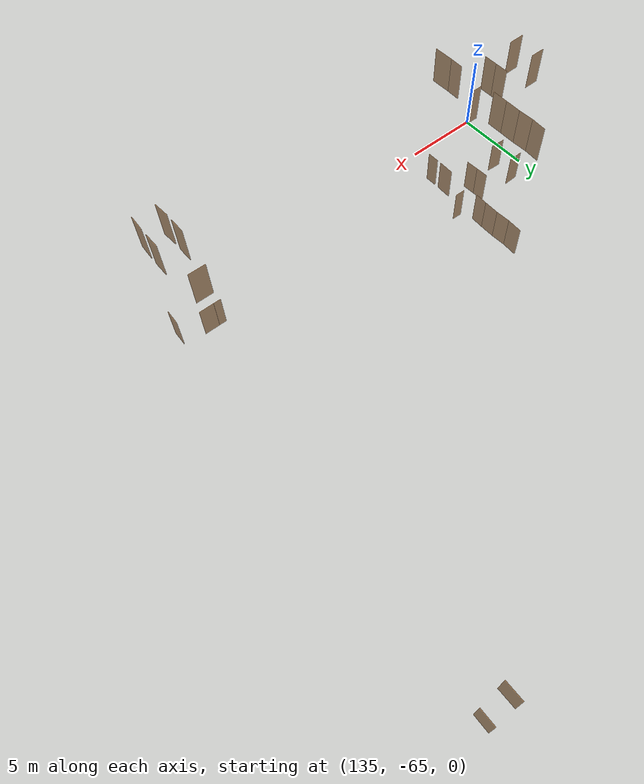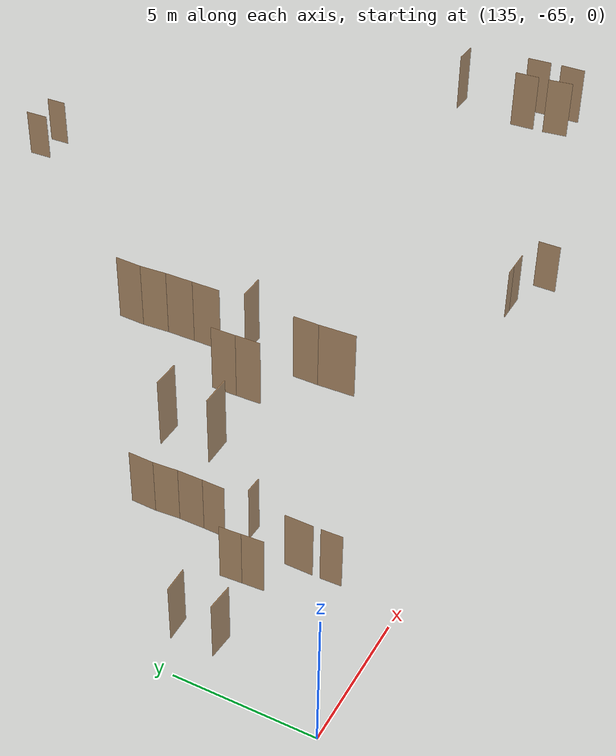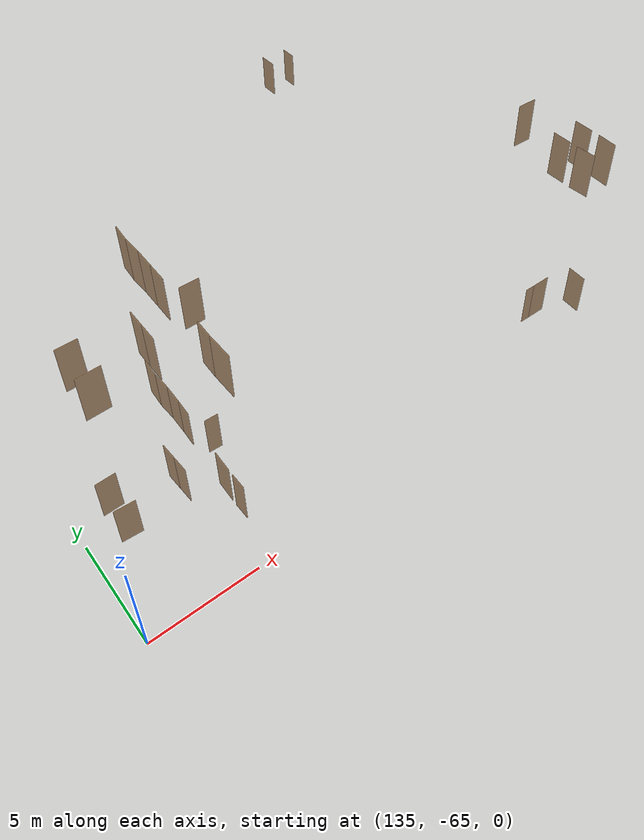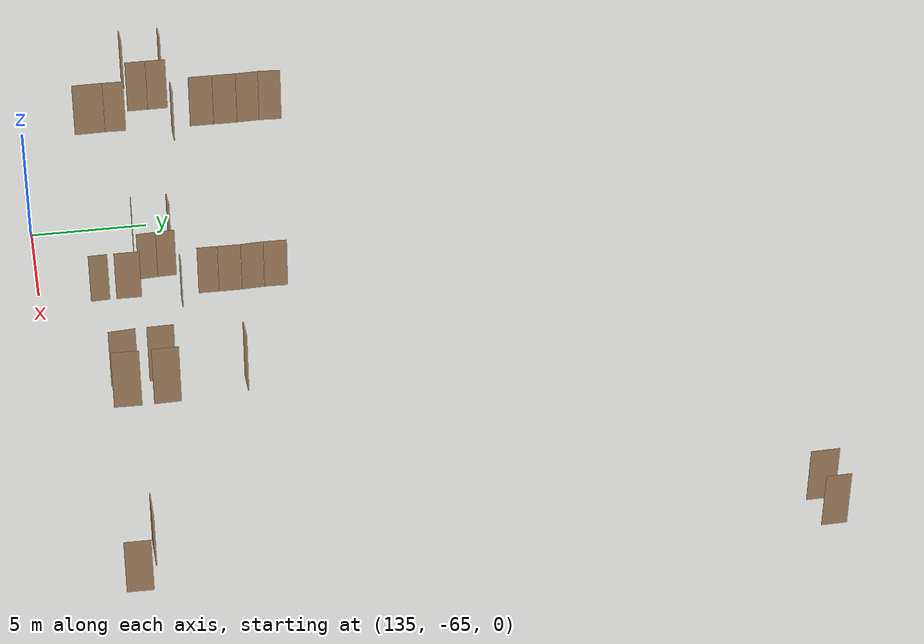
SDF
<sdf version="1.7">
 <world name="sim_world">
  <model name="puerta48">
   <pose>161.20486033684082 -37.1229894100867 0.0 0 0 1.5707963267948966</pose>
   <link name="right">
    <pose>0 0 1.11 0 0 0</pose>
    <visual name="right_visual">
     <geometry><box><size>0.9678314449320291 0.03 2.2</size></box></geometry>
     <material>
      <ambient>0.5 0.25 0 0.6</ambient>
      <diffuse>0.5 0.25 0 0.6</diffuse>
      <pbr><metal><metalness>0.0</metalness></metal></pbr>
     </material>
    </visual>
    <collision name="right_collision">
     <geometry><box><size>0.9678314449320291 0.03 2.2</size></box></geometry>
     <surface><contact><collide_bitmask>0x02</collide_bitmask></contact></surface>
    </collision>
    <inertial>
     <mass>50.0</mass>
     <inertia><ixx>20.17041666666667</ixx><iyy>24.06957377416342</iyy><izz>3.9066571074967475</izz></inertia>
    </inertial>
   </link>
   <joint name="right_joint" type="revolute">
    <parent>world</parent>
    <child>right</child>
    <axis><xyz>0 0 1</xyz><limit><lower>0</lower><upper>1.57</upper></limit></axis>
    <pose>0.48891572246601456 0 0 0 0 0</pose>
   </joint>
   <plugin name="register_component" filename="libregister_component.so">
    <component name="Door">
     <v_max_door>0.5</v_max_door>
     <a_max_door>0.3</a_max_door>
     <a_nom_door>0.15</a_nom_door>
     <dx_min_door>0.01</dx_min_door>
     <f_max_door>500.0</f_max_door>
     <ros_interface>true</ros_interface>
     <door name="puerta48" type="SwingDoor" left_joint_name="empty_joint" right_joint_name="right_joint"/>
    </component>
   </plugin>
  </model>
  <model name="puerta49">
   <pose>159.6233365168988 -37.1172463701042 0.0 0 0 -1.561045129849499</pose>
   <link name="right">
    <pose>0 0 1.11 0 0 0</pose>
    <visual name="right_visual">
     <geometry><box><size>1.1075266973527584 0.03 2.2</size></box></geometry>
     <material>
      <ambient>0.5 0.25 0 0.6</ambient>
      <diffuse>0.5 0.25 0 0.6</diffuse>
      <pbr><metal><metalness>0.0</metalness></metal></pbr>
     </material>
    </visual>
    <collision name="right_collision">
     <geometry><box><size>1.1075266973527584 0.03 2.2</size></box></geometry>
     <surface><contact><collide_bitmask>0x02</collide_bitmask></contact></surface>
    </collision>
    <inertial>
     <mass>50.0</mass>
     <inertia><ixx>20.17041666666667</ixx><iyy>25.27756410562129</iyy><izz>5.114647438954619</izz></inertia>
    </inertial>
   </link>
   <joint name="right_joint" type="revolute">
    <parent>world</parent>
    <child>right</child>
    <axis><xyz>0 0 -1</xyz><limit><lower>0</lower><upper>1.57</upper></limit></axis>
    <pose>0.5587633486763792 0 0 0 0 0</pose>
   </joint>
   <plugin name="register_component" filename="libregister_component.so">
    <component name="Door">
     <v_max_door>0.5</v_max_door>
     <a_max_door>0.3</a_max_door>
     <a_nom_door>0.15</a_nom_door>
     <dx_min_door>0.01</dx_min_door>
     <f_max_door>500.0</f_max_door>
     <ros_interface>true</ros_interface>
     <door name="puerta49" type="SwingDoor" left_joint_name="empty_joint" right_joint_name="right_joint"/>
    </component>
   </plugin>
  </model>
  <model name="puerta96">
   <pose>158.44045961149277 -61.962962651306995 0.0 0 0 -0.0013631082044759458</pose>
   <link name="right">
    <pose>0.2417829091130464 0 1.11 0 0 0</pose>
    <visual name="right_visual">
     <geometry><box><size>0.9571316364521855 0.03 2.2</size></box></geometry>
     <material>
      <ambient>0.5 0.25 0 0.6</ambient>
      <diffuse>0.5 0.25 0 0.6</diffuse>
      <pbr><metal><metalness>0.0</metalness></metal></pbr>
     </material>
    </visual>
    <collision name="right_collision">
     <geometry><box><size>0.9571316364521855 0.03 2.2</size></box></geometry>
     <surface><contact><collide_bitmask>0x02</collide_bitmask></contact></surface>
    </collision>
    <inertial>
     <mass>50.0</mass>
     <inertia><ixx>20.17041666666667</ixx><iyy>23.9837540395735</iyy><izz>3.8208373729068277</izz></inertia>
    </inertial>
   </link>
   <joint name="right_joint" type="revolute">
    <parent>world</parent>
    <child>right</child>
    <axis><xyz>0 0 1</xyz><limit><lower>0</lower><upper>1.57</upper></limit></axis>
    <pose>0.48356581822609274 0 0 0 0 0</pose>
   </joint>
   <link name="left">
    <pose>-0.48356581822609274 0 1.11 0 0 0</pose>
    <visual name="left_visual">
     <geometry><box><size>0.4735658182260928 0.03 2.2</size></box></geometry>
     <material>
      <ambient>0.5 0.25 0 0.6</ambient>
      <diffuse>0.5 0.25 0 0.6</diffuse>
      <pbr><metal><metalness>0.0</metalness></metal></pbr>
     </material>
    </visual>
    <collision name="left_collision">
     <geometry><box><size>0.4735658182260928 0.03 2.2</size></box></geometry>
     <surface><contact><collide_bitmask>0x02</collide_bitmask></contact></surface>
    </collision>
    <inertial>
     <mass>50.0</mass>
     <inertia><ixx>20.17041666666667</ixx><iyy>21.101102434133956</iyy><izz>0.9381857674672867</izz></inertia>
    </inertial>
   </link>
   <joint name="left_joint" type="revolute">
    <parent>world</parent>
    <child>left</child>
    <axis><xyz>0 0 1</xyz><limit><lower>-1.57</lower><upper>0</upper></limit></axis>
    <pose>-0.2417829091130464 0 0 0 0 0</pose>
   </joint>
   <plugin name="register_component" filename="libregister_component.so">
    <component name="Door">
     <v_max_door>0.5</v_max_door>
     <a_max_door>0.3</a_max_door>
     <a_nom_door>0.15</a_nom_door>
     <dx_min_door>0.01</dx_min_door>
     <f_max_door>500.0</f_max_door>
     <ros_interface>true</ros_interface>
     <door name="puerta96" type="DoubleSwingDoor" left_joint_name="left_joint" right_joint_name="right_joint"/>
    </component>
   </plugin>
  </model>
  <model name="puerta97">
   <pose>160.48380378577826 -62.66683215597506 0.0 0 0 1.5333224573307986</pose>
   <link name="right">
    <pose>0 0 1.11 0 0 0</pose>
    <visual name="right_visual">
     <geometry><box><size>0.9715077477447817 0.03 2.2</size></box></geometry>
     <material>
      <ambient>0.5 0.25 0 0.6</ambient>
      <diffuse>0.5 0.25 0 0.6</diffuse>
      <pbr><metal><metalness>0.0</metalness></metal></pbr>
     </material>
    </visual>
    <collision name="right_collision">
     <geometry><box><size>0.9715077477447817 0.03 2.2</size></box></geometry>
     <surface><contact><collide_bitmask>0x02</collide_bitmask></contact></surface>
    </collision>
    <inertial>
     <mass>50.0</mass>
     <inertia><ixx>20.17041666666667</ixx><iyy>24.099280433033915</iyy><izz>3.936363766367243</izz></inertia>
    </inertial>
   </link>
   <joint name="right_joint" type="revolute">
    <parent>world</parent>
    <child>right</child>
    <axis><xyz>0 0 1</xyz><limit><lower>0</lower><upper>1.57</upper></limit></axis>
    <pose>0.49075387387239083 0 0 0 0 0</pose>
   </joint>
   <plugin name="register_component" filename="libregister_component.so">
    <component name="Door">
     <v_max_door>0.5</v_max_door>
     <a_max_door>0.3</a_max_door>
     <a_nom_door>0.15</a_nom_door>
     <dx_min_door>0.01</dx_min_door>
     <f_max_door>500.0</f_max_door>
     <ros_interface>true</ros_interface>
     <door name="puerta97" type="SwingDoor" left_joint_name="empty_joint" right_joint_name="right_joint"/>
    </component>
   </plugin>
  </model>
  <model name="puerta146">
   <pose>136.74281278531123 -60.69867342087435 0.0 0 0 3.0836650988396612</pose>
   <link name="right">
    <pose>0 0 1.11 0 0 0</pose>
    <visual name="right_visual">
     <geometry><box><size>0.9594440184884868 0.03 2.2</size></box></geometry>
     <material>
      <ambient>0.5 0.25 0 0.6</ambient>
      <diffuse>0.5 0.25 0 0.6</diffuse>
      <pbr><metal><metalness>0.0</metalness></metal></pbr>
     </material>
    </visual>
    <collision name="right_collision">
     <geometry><box><size>0.9594440184884868 0.03 2.2</size></box></geometry>
     <surface><contact><collide_bitmask>0x02</collide_bitmask></contact></surface>
    </collision>
    <inertial>
     <mass>50.0</mass>
     <inertia><ixx>20.17041666666667</ixx><iyy>24.00222010255557</iyy><izz>3.8393034358888998</izz></inertia>
    </inertial>
   </link>
   <joint name="right_joint" type="revolute">
    <parent>world</parent>
    <child>right</child>
    <axis><xyz>0 0 -1</xyz><limit><lower>0</lower><upper>1.57</upper></limit></axis>
    <pose>0.4847220092442434 0 0 0 0 0</pose>
   </joint>
   <plugin name="register_component" filename="libregister_component.so">
    <component name="Door">
     <v_max_door>0.5</v_max_door>
     <a_max_door>0.3</a_max_door>
     <a_nom_door>0.15</a_nom_door>
     <dx_min_door>0.01</dx_min_door>
     <f_max_door>500.0</f_max_door>
     <ros_interface>true</ros_interface>
     <door name="puerta146" type="SwingDoor" left_joint_name="empty_joint" right_joint_name="right_joint"/>
    </component>
   </plugin>
  </model>
  <model name="puerta147">
   <pose>136.72754008557757 -59.11443585676477 0.0 0 0 -3.110618760742401</pose>
   <link name="right">
    <pose>0 0 1.11 0 0 0</pose>
    <visual name="right_visual">
     <geometry><box><size>0.9437179433462687 0.03 2.2</size></box></geometry>
     <material>
      <ambient>0.5 0.25 0 0.6</ambient>
      <diffuse>0.5 0.25 0 0.6</diffuse>
      <pbr><metal><metalness>0.0</metalness></metal></pbr>
     </material>
    </visual>
    <collision name="right_collision">
     <geometry><box><size>0.9437179433462687 0.03 2.2</size></box></geometry>
     <surface><contact><collide_bitmask>0x02</collide_bitmask></contact></surface>
    </collision>
    <inertial>
     <mass>50.0</mass>
     <inertia><ixx>20.17041666666667</ixx><iyy>23.87751481914047</iyy><izz>3.7145981524737968</izz></inertia>
    </inertial>
   </link>
   <joint name="right_joint" type="revolute">
    <parent>world</parent>
    <child>right</child>
    <axis><xyz>0 0 1</xyz><limit><lower>0</lower><upper>1.57</upper></limit></axis>
    <pose>0.47685897167313435 0 0 0 0 0</pose>
   </joint>
   <plugin name="register_component" filename="libregister_component.so">
    <component name="Door">
     <v_max_door>0.5</v_max_door>
     <a_max_door>0.3</a_max_door>
     <a_nom_door>0.15</a_nom_door>
     <dx_min_door>0.01</dx_min_door>
     <f_max_door>500.0</f_max_door>
     <ros_interface>true</ros_interface>
     <door name="puerta147" type="SwingDoor" left_joint_name="empty_joint" right_joint_name="right_joint"/>
    </component>
   </plugin>
  </model>
  <model name="puerta148">
   <pose>139.42885151822412 -59.91320226019124 0.0 0 0 -1.519125356661397</pose>
   <link name="right">
    <pose>0.4073107265420726 0 1.11 0 0 0</pose>
    <visual name="right_visual">
     <geometry><box><size>0.8046214530841452 0.03 2.2</size></box></geometry>
     <material>
      <ambient>0.5 0.25 0 0.6</ambient>
      <diffuse>0.5 0.25 0 0.6</diffuse>
      <pbr><metal><metalness>0.0</metalness></metal></pbr>
     </material>
    </visual>
    <collision name="right_collision">
     <geometry><box><size>0.8046214530841452 0.03 2.2</size></box></geometry>
     <surface><contact><collide_bitmask>0x02</collide_bitmask></contact></surface>
    </collision>
    <inertial>
     <mass>50.0</mass>
     <inertia><ixx>20.17041666666667</ixx><iyy>22.864232011513508</iyy><izz>2.701315344846839</izz></inertia>
    </inertial>
   </link>
   <joint name="right_joint" type="revolute">
    <parent>world</parent>
    <child>right</child>
    <axis><xyz>0 0 -1</xyz><limit><lower>0</lower><upper>1.57</upper></limit></axis>
    <pose>0.4073107265420726 0 0 0 0 0</pose>
   </joint>
   <link name="left">
    <pose>-0.4073107265420726 0 1.11 0 0 0</pose>
    <visual name="left_visual">
     <geometry><box><size>0.8046214530841452 0.03 2.2</size></box></geometry>
     <material>
      <ambient>0.5 0.25 0 0.6</ambient>
      <diffuse>0.5 0.25 0 0.6</diffuse>
      <pbr><metal><metalness>0.0</metalness></metal></pbr>
     </material>
    </visual>
    <collision name="left_collision">
     <geometry><box><size>0.8046214530841452 0.03 2.2</size></box></geometry>
     <surface><contact><collide_bitmask>0x02</collide_bitmask></contact></surface>
    </collision>
    <inertial>
     <mass>50.0</mass>
     <inertia><ixx>20.17041666666667</ixx><iyy>22.864232011513508</iyy><izz>2.701315344846839</izz></inertia>
    </inertial>
   </link>
   <joint name="left_joint" type="revolute">
    <parent>world</parent>
    <child>left</child>
    <axis><xyz>0 0 -1</xyz><limit><lower>-1.57</lower><upper>0</upper></limit></axis>
    <pose>-0.4073107265420726 0 0 0 0 0</pose>
   </joint>
   <plugin name="register_component" filename="libregister_component.so">
    <component name="Door">
     <v_max_door>0.5</v_max_door>
     <a_max_door>0.3</a_max_door>
     <a_nom_door>0.15</a_nom_door>
     <dx_min_door>0.01</dx_min_door>
     <f_max_door>500.0</f_max_door>
     <ros_interface>true</ros_interface>
     <door name="puerta148" type="DoubleSwingDoor" left_joint_name="left_joint" right_joint_name="right_joint"/>
    </component>
   </plugin>
  </model>
  <model name="puerta149">
   <pose>141.04184635579915 -57.91445605207021 0.0 0 0 1.538009103442832</pose>
   <link name="right">
    <pose>0 0 1.11 0 0 0</pose>
    <visual name="right_visual">
     <geometry><box><size>0.8460678696328846 0.03 2.2</size></box></geometry>
     <material>
      <ambient>0.5 0.25 0 0.6</ambient>
      <diffuse>0.5 0.25 0 0.6</diffuse>
      <pbr><metal><metalness>0.0</metalness></metal></pbr>
     </material>
    </visual>
    <collision name="right_collision">
     <geometry><box><size>0.8460678696328846 0.03 2.2</size></box></geometry>
     <surface><contact><collide_bitmask>0x02</collide_bitmask></contact></surface>
    </collision>
    <inertial>
     <mass>50.0</mass>
     <inertia><ixx>20.17041666666667</ixx><iyy>23.14929516677137</iyy><izz>2.9863785001046996</izz></inertia>
    </inertial>
   </link>
   <joint name="right_joint" type="revolute">
    <parent>world</parent>
    <child>right</child>
    <axis><xyz>0 0 -1</xyz><limit><lower>0</lower><upper>1.57</upper></limit></axis>
    <pose>0.4280339348164423 0 0 0 0 0</pose>
   </joint>
   <plugin name="register_component" filename="libregister_component.so">
    <component name="Door">
     <v_max_door>0.5</v_max_door>
     <a_max_door>0.3</a_max_door>
     <a_nom_door>0.15</a_nom_door>
     <dx_min_door>0.01</dx_min_door>
     <f_max_door>500.0</f_max_door>
     <ros_interface>true</ros_interface>
     <door name="puerta149" type="SwingDoor" left_joint_name="empty_joint" right_joint_name="right_joint"/>
    </component>
   </plugin>
  </model>
  <model name="puerta150">
   <pose>141.69407057417772 -59.106694323015475 0.0 0 0 3.1202799069450973</pose>
   <link name="right">
    <pose>0 0 1.11 0 0 0</pose>
    <visual name="right_visual">
     <geometry><box><size>0.6494002567926342 0.03 2.2</size></box></geometry>
     <material>
      <ambient>0.5 0.25 0 0.6</ambient>
      <diffuse>0.5 0.25 0 0.6</diffuse>
      <pbr><metal><metalness>0.0</metalness></metal></pbr>
     </material>
    </visual>
    <collision name="right_collision">
     <geometry><box><size>0.6494002567926342 0.03 2.2</size></box></geometry>
     <surface><contact><collide_bitmask>0x02</collide_bitmask></contact></surface>
    </collision>
    <inertial>
     <mass>50.0</mass>
     <inertia><ixx>20.17041666666667</ixx><iyy>21.923836223009754</iyy><izz>1.7609195563430806</izz></inertia>
    </inertial>
   </link>
   <joint name="right_joint" type="revolute">
    <parent>world</parent>
    <child>right</child>
    <axis><xyz>0 0 1</xyz><limit><lower>0</lower><upper>1.57</upper></limit></axis>
    <pose>0.3297001283963171 0 0 0 0 0</pose>
   </joint>
   <plugin name="register_component" filename="libregister_component.so">
    <component name="Door">
     <v_max_door>0.5</v_max_door>
     <a_max_door>0.3</a_max_door>
     <a_nom_door>0.15</a_nom_door>
     <dx_min_door>0.01</dx_min_door>
     <f_max_door>500.0</f_max_door>
     <ros_interface>true</ros_interface>
     <door name="puerta150" type="SwingDoor" left_joint_name="empty_joint" right_joint_name="right_joint"/>
    </component>
   </plugin>
  </model>
  <model name="puerta151">
   <pose>141.0628831322918 -56.99573794908257 0.0 0 0 1.556527497511804</pose>
   <link name="right">
    <pose>0 0 1.11 0 0 0</pose>
    <visual name="right_visual">
     <geometry><box><size>0.9719283908290248 0.03 2.2</size></box></geometry>
     <material>
      <ambient>0.5 0.25 0 0.6</ambient>
      <diffuse>0.5 0.25 0 0.6</diffuse>
      <pbr><metal><metalness>0.0</metalness></metal></pbr>
     </material>
    </visual>
    <collision name="right_collision">
     <geometry><box><size>0.9719283908290248 0.03 2.2</size></box></geometry>
     <surface><contact><collide_bitmask>0x02</collide_bitmask></contact></surface>
    </collision>
    <inertial>
     <mass>50.0</mass>
     <inertia><ixx>20.17041666666667</ixx><iyy>24.102686653747913</iyy><izz>3.9397699870812404</izz></inertia>
    </inertial>
   </link>
   <joint name="right_joint" type="revolute">
    <parent>world</parent>
    <child>right</child>
    <axis><xyz>0 0 -1</xyz><limit><lower>0</lower><upper>1.57</upper></limit></axis>
    <pose>0.4909641954145124 0 0 0 0 0</pose>
   </joint>
   <plugin name="register_component" filename="libregister_component.so">
    <component name="Door">
     <v_max_door>0.5</v_max_door>
     <a_max_door>0.3</a_max_door>
     <a_nom_door>0.15</a_nom_door>
     <dx_min_door>0.01</dx_min_door>
     <f_max_door>500.0</f_max_door>
     <ros_interface>true</ros_interface>
     <door name="puerta151" type="SwingDoor" left_joint_name="empty_joint" right_joint_name="right_joint"/>
    </component>
   </plugin>
  </model>
  <model name="puerta152">
   <pose>141.04184635579915 -56.027941046537535 0.0 0 0 1.629531461959887</pose>
   <link name="right">
    <pose>0 0 1.11 0 0 0</pose>
    <visual name="right_visual">
     <geometry><box><size>0.9454128983050369 0.03 2.2</size></box></geometry>
     <material>
      <ambient>0.5 0.25 0 0.6</ambient>
      <diffuse>0.5 0.25 0 0.6</diffuse>
      <pbr><metal><metalness>0.0</metalness></metal></pbr>
     </material>
    </visual>
    <collision name="right_collision">
     <geometry><box><size>0.9454128983050369 0.03 2.2</size></box></geometry>
     <surface><contact><collide_bitmask>0x02</collide_bitmask></contact></surface>
    </collision>
    <inertial>
     <mass>50.0</mass>
     <inertia><ixx>20.17041666666667</ixx><iyy>23.890856451173047</iyy><izz>3.727939784506376</izz></inertia>
    </inertial>
   </link>
   <joint name="right_joint" type="revolute">
    <parent>world</parent>
    <child>right</child>
    <axis><xyz>0 0 -1</xyz><limit><lower>0</lower><upper>1.57</upper></limit></axis>
    <pose>0.4777064491525185 0 0 0 0 0</pose>
   </joint>
   <plugin name="register_component" filename="libregister_component.so">
    <component name="Door">
     <v_max_door>0.5</v_max_door>
     <a_max_door>0.3</a_max_door>
     <a_nom_door>0.15</a_nom_door>
     <dx_min_door>0.01</dx_min_door>
     <f_max_door>500.0</f_max_door>
     <ros_interface>true</ros_interface>
     <door name="puerta152" type="SwingDoor" left_joint_name="empty_joint" right_joint_name="right_joint"/>
    </component>
   </plugin>
  </model>
  <model name="puerta153">
   <pose>141.03679752944092 -55.049268130545805 0.0 0 0 1.5250060288543885</pose>
   <link name="right">
    <pose>0 0 1.11 0 0 0</pose>
    <visual name="right_visual">
     <geometry><box><size>0.9946335086918363 0.03 2.2</size></box></geometry>
     <material>
      <ambient>0.5 0.25 0 0.6</ambient>
      <diffuse>0.5 0.25 0 0.6</diffuse>
      <pbr><metal><metalness>0.0</metalness></metal></pbr>
     </material>
    </visual>
    <collision name="right_collision">
     <geometry><box><size>0.9946335086918363 0.03 2.2</size></box></geometry>
     <surface><contact><collide_bitmask>0x02</collide_bitmask></contact></surface>
    </collision>
    <inertial>
     <mass>50.0</mass>
     <inertia><ixx>20.17041666666667</ixx><iyy>24.28873256921931</iyy><izz>4.125815902552639</izz></inertia>
    </inertial>
   </link>
   <joint name="right_joint" type="revolute">
    <parent>world</parent>
    <child>right</child>
    <axis><xyz>0 0 1</xyz><limit><lower>0</lower><upper>1.57</upper></limit></axis>
    <pose>0.5023167543459182 0 0 0 0 0</pose>
   </joint>
   <plugin name="register_component" filename="libregister_component.so">
    <component name="Door">
     <v_max_door>0.5</v_max_door>
     <a_max_door>0.3</a_max_door>
     <a_nom_door>0.15</a_nom_door>
     <dx_min_door>0.01</dx_min_door>
     <f_max_door>500.0</f_max_door>
     <ros_interface>true</ros_interface>
     <door name="puerta153" type="SwingDoor" left_joint_name="empty_joint" right_joint_name="right_joint"/>
    </component>
   </plugin>
  </model>
  <model name="puerta154">
   <pose>140.86652586050928 -62.45894673067454 0.0 0 0 1.5883190042706128</pose>
   <link name="right">
    <pose>0 0 1.11 0 0 0</pose>
    <visual name="right_visual">
     <geometry><box><size>0.7896044076444623 0.03 2.2</size></box></geometry>
     <material>
      <ambient>0.5 0.25 0 0.6</ambient>
      <diffuse>0.5 0.25 0 0.6</diffuse>
      <pbr><metal><metalness>0.0</metalness></metal></pbr>
     </material>
    </visual>
    <collision name="right_collision">
     <geometry><box><size>0.7896044076444623 0.03 2.2</size></box></geometry>
     <surface><contact><collide_bitmask>0x02</collide_bitmask></contact></surface>
    </collision>
    <inertial>
     <mass>50.0</mass>
     <inertia><ixx>20.17041666666667</ixx><iyy>22.764479669048182</iyy><izz>2.6015630023815093</izz></inertia>
    </inertial>
   </link>
   <joint name="right_joint" type="revolute">
    <parent>world</parent>
    <child>right</child>
    <axis><xyz>0 0 -1</xyz><limit><lower>0</lower><upper>1.57</upper></limit></axis>
    <pose>0.39980220382223114 0 0 0 0 0</pose>
   </joint>
   <plugin name="register_component" filename="libregister_component.so">
    <component name="Door">
     <v_max_door>0.5</v_max_door>
     <a_max_door>0.3</a_max_door>
     <a_nom_door>0.15</a_nom_door>
     <dx_min_door>0.01</dx_min_door>
     <f_max_door>500.0</f_max_door>
     <ros_interface>true</ros_interface>
     <door name="puerta154" type="SwingDoor" left_joint_name="empty_joint" right_joint_name="right_joint"/>
    </component>
   </plugin>
  </model>
  <model name="puerta155">
   <pose>140.87355214385784 -61.25972424993371 0.0 0 0 -1.5971164235752267</pose>
   <link name="right">
    <pose>0 0 1.11 0 0 0</pose>
    <visual name="right_visual">
     <geometry><box><size>1.0563448709832066 0.03 2.2</size></box></geometry>
     <material>
      <ambient>0.5 0.25 0 0.6</ambient>
      <diffuse>0.5 0.25 0 0.6</diffuse>
      <pbr><metal><metalness>0.0</metalness></metal></pbr>
     </material>
    </visual>
    <collision name="right_collision">
     <geometry><box><size>1.0563448709832066 0.03 2.2</size></box></geometry>
     <surface><contact><collide_bitmask>0x02</collide_bitmask></contact></surface>
    </collision>
    <inertial>
     <mass>50.0</mass>
     <inertia><ixx>20.17041666666667</ixx><iyy>24.816102026885535</iyy><izz>4.653185360218864</izz></inertia>
    </inertial>
   </link>
   <joint name="right_joint" type="revolute">
    <parent>world</parent>
    <child>right</child>
    <axis><xyz>0 0 1</xyz><limit><lower>0</lower><upper>1.57</upper></limit></axis>
    <pose>0.5331724354916033 0 0 0 0 0</pose>
   </joint>
   <plugin name="register_component" filename="libregister_component.so">
    <component name="Door">
     <v_max_door>0.5</v_max_door>
     <a_max_door>0.3</a_max_door>
     <a_nom_door>0.15</a_nom_door>
     <dx_min_door>0.01</dx_min_door>
     <f_max_door>500.0</f_max_door>
     <ros_interface>true</ros_interface>
     <door name="puerta155" type="SwingDoor" left_joint_name="empty_joint" right_joint_name="right_joint"/>
    </component>
   </plugin>
  </model>
  <model name="puerta172">
   <pose>139.31433001577295 -59.91083014168045 8.0 0 0 1.5711328227420953</pose>
   <link name="right">
    <pose>0.41104262512123724 0 1.11 0 0 0</pose>
    <visual name="right_visual">
     <geometry><box><size>0.8120852502424745 0.03 2.2</size></box></geometry>
     <material>
      <ambient>0.5 0.25 0 0.6</ambient>
      <diffuse>0.5 0.25 0 0.6</diffuse>
      <pbr><metal><metalness>0.0</metalness></metal></pbr>
     </material>
    </visual>
    <collision name="right_collision">
     <geometry><box><size>0.8120852502424745 0.03 2.2</size></box></geometry>
     <surface><contact><collide_bitmask>0x02</collide_bitmask></contact></surface>
    </collision>
    <inertial>
     <mass>50.0</mass>
     <inertia><ixx>20.17041666666667</ixx><iyy>22.914510223589097</iyy><izz>2.7515935569224266</izz></inertia>
    </inertial>
   </link>
   <joint name="right_joint" type="revolute">
    <parent>world</parent>
    <child>right</child>
    <axis><xyz>0 0 1</xyz><limit><lower>0</lower><upper>1.57</upper></limit></axis>
    <pose>0.41104262512123724 0 0 0 0 0</pose>
   </joint>
   <link name="left">
    <pose>-0.41104262512123724 0 1.11 0 0 0</pose>
    <visual name="left_visual">
     <geometry><box><size>0.8120852502424745 0.03 2.2</size></box></geometry>
     <material>
      <ambient>0.5 0.25 0 0.6</ambient>
      <diffuse>0.5 0.25 0 0.6</diffuse>
      <pbr><metal><metalness>0.0</metalness></metal></pbr>
     </material>
    </visual>
    <collision name="left_collision">
     <geometry><box><size>0.8120852502424745 0.03 2.2</size></box></geometry>
     <surface><contact><collide_bitmask>0x02</collide_bitmask></contact></surface>
    </collision>
    <inertial>
     <mass>50.0</mass>
     <inertia><ixx>20.17041666666667</ixx><iyy>22.914510223589097</iyy><izz>2.7515935569224266</izz></inertia>
    </inertial>
   </link>
   <joint name="left_joint" type="revolute">
    <parent>world</parent>
    <child>left</child>
    <axis><xyz>0 0 1</xyz><limit><lower>-1.57</lower><upper>0</upper></limit></axis>
    <pose>-0.41104262512123724 0 0 0 0 0</pose>
   </joint>
   <plugin name="register_component" filename="libregister_component.so">
    <component name="Door">
     <v_max_door>0.5</v_max_door>
     <a_max_door>0.3</a_max_door>
     <a_nom_door>0.15</a_nom_door>
     <dx_min_door>0.01</dx_min_door>
     <f_max_door>500.0</f_max_door>
     <ros_interface>true</ros_interface>
     <door name="puerta172" type="DoubleSwingDoor" left_joint_name="left_joint" right_joint_name="right_joint"/>
    </component>
   </plugin>
  </model>
  <model name="puerta173">
   <pose>141.70472344098005 -59.10668592541095 8.0 0 0 -3.138583406693314</pose>
   <link name="right">
    <pose>0 0 1.11 0 0 0</pose>
    <visual name="right_visual">
     <geometry><box><size>0.8558697736827363 0.03 2.2</size></box></geometry>
     <material>
      <ambient>0.5 0.25 0 0.6</ambient>
      <diffuse>0.5 0.25 0 0.6</diffuse>
      <pbr><metal><metalness>0.0</metalness></metal></pbr>
     </material>
    </visual>
    <collision name="right_collision">
     <geometry><box><size>0.8558697736827363 0.03 2.2</size></box></geometry>
     <surface><contact><collide_bitmask>0x02</collide_bitmask></contact></surface>
    </collision>
    <inertial>
     <mass>50.0</mass>
     <inertia><ixx>20.17041666666667</ixx><iyy>23.21880445626558</iyy><izz>3.0558877895989096</izz></inertia>
    </inertial>
   </link>
   <joint name="right_joint" type="revolute">
    <parent>world</parent>
    <child>right</child>
    <axis><xyz>0 0 1</xyz><limit><lower>0</lower><upper>1.57</upper></limit></axis>
    <pose>0.43293488684136816 0 0 0 0 0</pose>
   </joint>
   <plugin name="register_component" filename="libregister_component.so">
    <component name="Door">
     <v_max_door>0.5</v_max_door>
     <a_max_door>0.3</a_max_door>
     <a_nom_door>0.15</a_nom_door>
     <dx_min_door>0.01</dx_min_door>
     <f_max_door>500.0</f_max_door>
     <ros_interface>true</ros_interface>
     <door name="puerta173" type="SwingDoor" left_joint_name="empty_joint" right_joint_name="right_joint"/>
    </component>
   </plugin>
  </model>
  <model name="puerta174">
   <pose>141.05770733379399 -57.875763851081224 8.0 0 0 1.560724342282103</pose>
   <link name="right">
    <pose>0 0 1.11 0 0 0</pose>
    <visual name="right_visual">
     <geometry><box><size>0.9440703044677249 0.03 2.2</size></box></geometry>
     <material>
      <ambient>0.5 0.25 0 0.6</ambient>
      <diffuse>0.5 0.25 0 0.6</diffuse>
      <pbr><metal><metalness>0.0</metalness></metal></pbr>
     </material>
    </visual>
    <collision name="right_collision">
     <geometry><box><size>0.9440703044677249 0.03 2.2</size></box></geometry>
     <surface><contact><collide_bitmask>0x02</collide_bitmask></contact></surface>
    </collision>
    <inertial>
     <mass>50.0</mass>
     <inertia><ixx>20.17041666666667</ixx><iyy>23.88028641574077</iyy><izz>3.7173697490740953</izz></inertia>
    </inertial>
   </link>
   <joint name="right_joint" type="revolute">
    <parent>world</parent>
    <child>right</child>
    <axis><xyz>0 0 -1</xyz><limit><lower>0</lower><upper>1.57</upper></limit></axis>
    <pose>0.47703515223386245 0 0 0 0 0</pose>
   </joint>
   <plugin name="register_component" filename="libregister_component.so">
    <component name="Door">
     <v_max_door>0.5</v_max_door>
     <a_max_door>0.3</a_max_door>
     <a_nom_door>0.15</a_nom_door>
     <dx_min_door>0.01</dx_min_door>
     <f_max_door>500.0</f_max_door>
     <ros_interface>true</ros_interface>
     <door name="puerta174" type="SwingDoor" left_joint_name="empty_joint" right_joint_name="right_joint"/>
    </component>
   </plugin>
  </model>
  <model name="puerta175">
   <pose>141.06731655265514 -56.921741938974364 8.0 0 0 1.5607243422820436</pose>
   <link name="right">
    <pose>0 0 1.11 0 0 0</pose>
    <visual name="right_visual">
     <geometry><box><size>0.9440703044677327 0.03 2.2</size></box></geometry>
     <material>
      <ambient>0.5 0.25 0 0.6</ambient>
      <diffuse>0.5 0.25 0 0.6</diffuse>
      <pbr><metal><metalness>0.0</metalness></metal></pbr>
     </material>
    </visual>
    <collision name="right_collision">
     <geometry><box><size>0.9440703044677327 0.03 2.2</size></box></geometry>
     <surface><contact><collide_bitmask>0x02</collide_bitmask></contact></surface>
    </collision>
    <inertial>
     <mass>50.0</mass>
     <inertia><ixx>20.17041666666667</ixx><iyy>23.880286415740827</iyy><izz>3.717369749074156</izz></inertia>
    </inertial>
   </link>
   <joint name="right_joint" type="revolute">
    <parent>world</parent>
    <child>right</child>
    <axis><xyz>0 0 -1</xyz><limit><lower>0</lower><upper>1.57</upper></limit></axis>
    <pose>0.47703515223386633 0 0 0 0 0</pose>
   </joint>
   <plugin name="register_component" filename="libregister_component.so">
    <component name="Door">
     <v_max_door>0.5</v_max_door>
     <a_max_door>0.3</a_max_door>
     <a_nom_door>0.15</a_nom_door>
     <dx_min_door>0.01</dx_min_door>
     <f_max_door>500.0</f_max_door>
     <ros_interface>true</ros_interface>
     <door name="puerta175" type="SwingDoor" left_joint_name="empty_joint" right_joint_name="right_joint"/>
    </component>
   </plugin>
  </model>
  <model name="puerta176">
   <pose>141.0521085266721 -55.99257502487193 8.0 0 0 1.6150279292258989</pose>
   <link name="right">
    <pose>0 0 1.11 0 0 0</pose>
    <visual name="right_visual">
     <geometry><box><size>0.8951972513776463 0.03 2.2</size></box></geometry>
     <material>
      <ambient>0.5 0.25 0 0.6</ambient>
      <diffuse>0.5 0.25 0 0.6</diffuse>
      <pbr><metal><metalness>0.0</metalness></metal></pbr>
     </material>
    </visual>
    <collision name="right_collision">
     <geometry><box><size>0.8951972513776463 0.03 2.2</size></box></geometry>
     <surface><contact><collide_bitmask>0x02</collide_bitmask></contact></surface>
    </collision>
    <inertial>
     <mass>50.0</mass>
     <inertia><ixx>20.17041666666667</ixx><iyy>23.50574216197539</iyy><izz>3.34282549530872</izz></inertia>
    </inertial>
   </link>
   <joint name="right_joint" type="revolute">
    <parent>world</parent>
    <child>right</child>
    <axis><xyz>0 0 -1</xyz><limit><lower>0</lower><upper>1.57</upper></limit></axis>
    <pose>0.45259862568882314 0 0 0 0 0</pose>
   </joint>
   <plugin name="register_component" filename="libregister_component.so">
    <component name="Door">
     <v_max_door>0.5</v_max_door>
     <a_max_door>0.3</a_max_door>
     <a_nom_door>0.15</a_nom_door>
     <dx_min_door>0.01</dx_min_door>
     <f_max_door>500.0</f_max_door>
     <ros_interface>true</ros_interface>
     <door name="puerta176" type="SwingDoor" left_joint_name="empty_joint" right_joint_name="right_joint"/>
    </component>
   </plugin>
  </model>
  <model name="puerta177">
   <pose>141.06175383502972 -55.08328127313459 8.0 0 0 1.5060096519575406</pose>
   <link name="right">
    <pose>0 0 1.11 0 0 0</pose>
    <visual name="right_visual">
     <geometry><box><size>0.9061976992919885 0.03 2.2</size></box></geometry>
     <material>
      <ambient>0.5 0.25 0 0.6</ambient>
      <diffuse>0.5 0.25 0 0.6</diffuse>
      <pbr><metal><metalness>0.0</metalness></metal></pbr>
     </material>
    </visual>
    <collision name="right_collision">
     <geometry><box><size>0.9061976992919885 0.03 2.2</size></box></geometry>
     <surface><contact><collide_bitmask>0x02</collide_bitmask></contact></surface>
    </collision>
    <inertial>
     <mass>50.0</mass>
     <inertia><ixx>20.17041666666667</ixx><iyy>23.58830945917539</iyy><izz>3.4253927925087218</izz></inertia>
    </inertial>
   </link>
   <joint name="right_joint" type="revolute">
    <parent>world</parent>
    <child>right</child>
    <axis><xyz>0 0 1</xyz><limit><lower>0</lower><upper>1.57</upper></limit></axis>
    <pose>0.45809884964599423 0 0 0 0 0</pose>
   </joint>
   <plugin name="register_component" filename="libregister_component.so">
    <component name="Door">
     <v_max_door>0.5</v_max_door>
     <a_max_door>0.3</a_max_door>
     <a_nom_door>0.15</a_nom_door>
     <dx_min_door>0.01</dx_min_door>
     <f_max_door>500.0</f_max_door>
     <ros_interface>true</ros_interface>
     <door name="puerta177" type="SwingDoor" left_joint_name="empty_joint" right_joint_name="right_joint"/>
    </component>
   </plugin>
  </model>
  <model name="puerta178">
   <pose>136.8246636304653 -59.114450293329014 8.0 0 0 -3.130276279726534</pose>
   <link name="right">
    <pose>0 0 1.11 0 0 0</pose>
    <visual name="right_visual">
     <geometry><box><size>0.8944219275165178 0.03 2.2</size></box></geometry>
     <material>
      <ambient>0.5 0.25 0 0.6</ambient>
      <diffuse>0.5 0.25 0 0.6</diffuse>
      <pbr><metal><metalness>0.0</metalness></metal></pbr>
     </material>
    </visual>
    <collision name="right_collision">
     <geometry><box><size>0.8944219275165178 0.03 2.2</size></box></geometry>
     <surface><contact><collide_bitmask>0x02</collide_bitmask></contact></surface>
    </collision>
    <inertial>
     <mass>50.0</mass>
     <inertia><ixx>20.17041666666667</ixx><iyy>23.49996076842652</iyy><izz>3.3370441017598464</izz></inertia>
    </inertial>
   </link>
   <joint name="right_joint" type="revolute">
    <parent>world</parent>
    <child>right</child>
    <axis><xyz>0 0 1</xyz><limit><lower>0</lower><upper>1.57</upper></limit></axis>
    <pose>0.4522109637582589 0 0 0 0 0</pose>
   </joint>
   <plugin name="register_component" filename="libregister_component.so">
    <component name="Door">
     <v_max_door>0.5</v_max_door>
     <a_max_door>0.3</a_max_door>
     <a_nom_door>0.15</a_nom_door>
     <dx_min_door>0.01</dx_min_door>
     <f_max_door>500.0</f_max_door>
     <ros_interface>true</ros_interface>
     <door name="puerta178" type="SwingDoor" left_joint_name="empty_joint" right_joint_name="right_joint"/>
    </component>
   </plugin>
  </model>
  <model name="puerta179">
   <pose>136.84337946254192 -60.71458069207348 8.0 0 0 -3.116909705408078</pose>
   <link name="right">
    <pose>0 0 1.11 0 0 0</pose>
    <visual name="right_visual">
     <geometry><box><size>0.9907685519133451 0.03 2.2</size></box></geometry>
     <material>
      <ambient>0.5 0.25 0 0.6</ambient>
      <diffuse>0.5 0.25 0 0.6</diffuse>
      <pbr><metal><metalness>0.0</metalness></metal></pbr>
     </material>
    </visual>
    <collision name="right_collision">
     <geometry><box><size>0.9907685519133451 0.03 2.2</size></box></geometry>
     <surface><contact><collide_bitmask>0x02</collide_bitmask></contact></surface>
    </collision>
    <inertial>
     <mass>50.0</mass>
     <inertia><ixx>20.17041666666667</ixx><iyy>24.256759681085285</iyy><izz>4.093843014418613</izz></inertia>
    </inertial>
   </link>
   <joint name="right_joint" type="revolute">
    <parent>world</parent>
    <child>right</child>
    <axis><xyz>0 0 -1</xyz><limit><lower>0</lower><upper>1.57</upper></limit></axis>
    <pose>0.5003842759566726 0 0 0 0 0</pose>
   </joint>
   <plugin name="register_component" filename="libregister_component.so">
    <component name="Door">
     <v_max_door>0.5</v_max_door>
     <a_max_door>0.3</a_max_door>
     <a_nom_door>0.15</a_nom_door>
     <dx_min_door>0.01</dx_min_door>
     <f_max_door>500.0</f_max_door>
     <ros_interface>true</ros_interface>
     <door name="puerta179" type="SwingDoor" left_joint_name="empty_joint" right_joint_name="right_joint"/>
    </component>
   </plugin>
  </model>
  <model name="puerta202">
   <pose>140.93680345141428 -62.39299230153951 8.0 0 0 1.5903491961951193</pose>
   <link name="right">
    <pose>0 0 1.11 0 0 0</pose>
    <visual name="right_visual">
     <geometry><box><size>1.2009558097436208 0.03 2.2</size></box></geometry>
     <material>
      <ambient>0.5 0.25 0 0.6</ambient>
      <diffuse>0.5 0.25 0 0.6</diffuse>
      <pbr><metal><metalness>0.0</metalness></metal></pbr>
     </material>
    </visual>
    <collision name="right_collision">
     <geometry><box><size>1.2009558097436208 0.03 2.2</size></box></geometry>
     <surface><contact><collide_bitmask>0x02</collide_bitmask></contact></surface>
    </collision>
    <inertial>
     <mass>50.0</mass>
     <inertia><ixx>20.17041666666667</ixx><iyy>26.17622857065399</iyy><izz>6.013311903987317</izz></inertia>
    </inertial>
   </link>
   <joint name="right_joint" type="revolute">
    <parent>world</parent>
    <child>right</child>
    <axis><xyz>0 0 -1</xyz><limit><lower>0</lower><upper>1.57</upper></limit></axis>
    <pose>0.6054779048718104 0 0 0 0 0</pose>
   </joint>
   <plugin name="register_component" filename="libregister_component.so">
    <component name="Door">
     <v_max_door>0.5</v_max_door>
     <a_max_door>0.3</a_max_door>
     <a_nom_door>0.15</a_nom_door>
     <dx_min_door>0.01</dx_min_door>
     <f_max_door>500.0</f_max_door>
     <ros_interface>true</ros_interface>
     <door name="puerta202" type="SwingDoor" left_joint_name="empty_joint" right_joint_name="right_joint"/>
    </component>
   </plugin>
  </model>
  <model name="puerta203">
   <pose>140.9364574093481 -61.36462314589342 8.0 0 0 -1.5979571260984156</pose>
   <link name="right">
    <pose>0 0 1.11 0 0 0</pose>
    <visual name="right_visual">
     <geometry><box><size>0.8363261292970754 0.03 2.2</size></box></geometry>
     <material>
      <ambient>0.5 0.25 0 0.6</ambient>
      <diffuse>0.5 0.25 0 0.6</diffuse>
      <pbr><metal><metalness>0.0</metalness></metal></pbr>
     </material>
    </visual>
    <collision name="right_collision">
     <geometry><box><size>0.8363261292970754 0.03 2.2</size></box></geometry>
     <surface><contact><collide_bitmask>0x02</collide_bitmask></contact></surface>
    </collision>
    <inertial>
     <mass>50.0</mass>
     <inertia><ixx>20.17041666666667</ixx><iyy>23.081005810604292</iyy><izz>2.918089143937619</izz></inertia>
    </inertial>
   </link>
   <joint name="right_joint" type="revolute">
    <parent>world</parent>
    <child>right</child>
    <axis><xyz>0 0 1</xyz><limit><lower>0</lower><upper>1.57</upper></limit></axis>
    <pose>0.4231630646485377 0 0 0 0 0</pose>
   </joint>
   <plugin name="register_component" filename="libregister_component.so">
    <component name="Door">
     <v_max_door>0.5</v_max_door>
     <a_max_door>0.3</a_max_door>
     <a_nom_door>0.15</a_nom_door>
     <dx_min_door>0.01</dx_min_door>
     <f_max_door>500.0</f_max_door>
     <ros_interface>true</ros_interface>
     <door name="puerta203" type="SwingDoor" left_joint_name="empty_joint" right_joint_name="right_joint"/>
    </component>
   </plugin>
  </model>
  <model name="puerta210">
   <pose>159.132414814901 -61.321871987949635 8.0 0 0 -1.561867034335184</pose>
   <link name="right">
    <pose>0 0 1.11 0 0 0</pose>
    <visual name="right_visual">
     <geometry><box><size>0.92040553055976 0.03 2.2</size></box></geometry>
     <material>
      <ambient>0.5 0.25 0 0.6</ambient>
      <diffuse>0.5 0.25 0 0.6</diffuse>
      <pbr><metal><metalness>0.0</metalness></metal></pbr>
     </material>
    </visual>
    <collision name="right_collision">
     <geometry><box><size>0.92040553055976 0.03 2.2</size></box></geometry>
     <surface><contact><collide_bitmask>0x02</collide_bitmask></contact></surface>
    </collision>
    <inertial>
     <mass>50.0</mass>
     <inertia><ixx>20.17041666666667</ixx><iyy>23.69644308618748</iyy><izz>3.5335264195208063</izz></inertia>
    </inertial>
   </link>
   <joint name="right_joint" type="revolute">
    <parent>world</parent>
    <child>right</child>
    <axis><xyz>0 0 1</xyz><limit><lower>0</lower><upper>1.57</upper></limit></axis>
    <pose>0.46520276527988 0 0 0 0 0</pose>
   </joint>
   <plugin name="register_component" filename="libregister_component.so">
    <component name="Door">
     <v_max_door>0.5</v_max_door>
     <a_max_door>0.3</a_max_door>
     <a_nom_door>0.15</a_nom_door>
     <dx_min_door>0.01</dx_min_door>
     <f_max_door>500.0</f_max_door>
     <ros_interface>true</ros_interface>
     <door name="puerta210" type="SwingDoor" left_joint_name="empty_joint" right_joint_name="right_joint"/>
    </component>
   </plugin>
  </model>
  <model name="puerta211">
   <pose>160.5270606524823 -61.302993875434154 8.0 0 0 -1.5623752064174967</pose>
   <link name="right">
    <pose>0 0 1.11 0 0 0</pose>
    <visual name="right_visual">
     <geometry><box><size>0.9268396251926485 0.03 2.2</size></box></geometry>
     <material>
      <ambient>0.5 0.25 0 0.6</ambient>
      <diffuse>0.5 0.25 0 0.6</diffuse>
      <pbr><metal><metalness>0.0</metalness></metal></pbr>
     </material>
    </visual>
    <collision name="right_collision">
     <geometry><box><size>0.9268396251926485 0.03 2.2</size></box></geometry>
     <surface><contact><collide_bitmask>0x02</collide_bitmask></contact></surface>
    </collision>
    <inertial>
     <mass>50.0</mass>
     <inertia><ixx>20.17041666666667</ixx><iyy>23.74596537844688</iyy><izz>3.5830487117802052</izz></inertia>
    </inertial>
   </link>
   <joint name="right_joint" type="revolute">
    <parent>world</parent>
    <child>right</child>
    <axis><xyz>0 0 -1</xyz><limit><lower>0</lower><upper>1.57</upper></limit></axis>
    <pose>0.46841981259632426 0 0 0 0 0</pose>
   </joint>
   <plugin name="register_component" filename="libregister_component.so">
    <component name="Door">
     <v_max_door>0.5</v_max_door>
     <a_max_door>0.3</a_max_door>
     <a_nom_door>0.15</a_nom_door>
     <dx_min_door>0.01</dx_min_door>
     <f_max_door>500.0</f_max_door>
     <ros_interface>true</ros_interface>
     <door name="puerta211" type="SwingDoor" left_joint_name="empty_joint" right_joint_name="right_joint"/>
    </component>
   </plugin>
  </model>
  <model name="puerta212">
   <pose>160.5116523498495 -62.65469032444537 8.0 0 0 1.5300178804045248</pose>
   <link name="right">
    <pose>0 0 1.11 0 0 0</pose>
    <visual name="right_visual">
     <geometry><box><size>0.9461310474570482 0.03 2.2</size></box></geometry>
     <material>
      <ambient>0.5 0.25 0 0.6</ambient>
      <diffuse>0.5 0.25 0 0.6</diffuse>
      <pbr><metal><metalness>0.0</metalness></metal></pbr>
     </material>
    </visual>
    <collision name="right_collision">
     <geometry><box><size>0.9461310474570482 0.03 2.2</size></box></geometry>
     <surface><contact><collide_bitmask>0x02</collide_bitmask></contact></surface>
    </collision>
    <inertial>
     <mass>50.0</mass>
     <inertia><ixx>20.17041666666667</ixx><iyy>23.89651649567572</iyy><izz>3.733599829009047</izz></inertia>
    </inertial>
   </link>
   <joint name="right_joint" type="revolute">
    <parent>world</parent>
    <child>right</child>
    <axis><xyz>0 0 1</xyz><limit><lower>0</lower><upper>1.57</upper></limit></axis>
    <pose>0.4780655237285241 0 0 0 0 0</pose>
   </joint>
   <plugin name="register_component" filename="libregister_component.so">
    <component name="Door">
     <v_max_door>0.5</v_max_door>
     <a_max_door>0.3</a_max_door>
     <a_nom_door>0.15</a_nom_door>
     <dx_min_door>0.01</dx_min_door>
     <f_max_door>500.0</f_max_door>
     <ros_interface>true</ros_interface>
     <door name="puerta212" type="SwingDoor" left_joint_name="empty_joint" right_joint_name="right_joint"/>
    </component>
   </plugin>
  </model>
  <model name="puerta213">
   <pose>159.1759443111609 -62.63641538520993 8.0 0 0 1.654118449513129</pose>
   <link name="right">
    <pose>0 0 1.11 0 0 0</pose>
    <visual name="right_visual">
     <geometry><box><size>0.9331684845392159 0.03 2.2</size></box></geometry>
     <material>
      <ambient>0.5 0.25 0 0.6</ambient>
      <diffuse>0.5 0.25 0 0.6</diffuse>
      <pbr><metal><metalness>0.0</metalness></metal></pbr>
     </material>
    </visual>
    <collision name="right_collision">
     <geometry><box><size>0.9331684845392159 0.03 2.2</size></box></geometry>
     <surface><contact><collide_bitmask>0x02</collide_bitmask></contact></surface>
    </collision>
    <inertial>
     <mass>50.0</mass>
     <inertia><ixx>20.17041666666667</ixx><iyy>23.79501425223841</iyy><izz>3.632097585571737</izz></inertia>
    </inertial>
   </link>
   <joint name="right_joint" type="revolute">
    <parent>world</parent>
    <child>right</child>
    <axis><xyz>0 0 -1</xyz><limit><lower>0</lower><upper>1.57</upper></limit></axis>
    <pose>0.47158424226960793 0 0 0 0 0</pose>
   </joint>
   <plugin name="register_component" filename="libregister_component.so">
    <component name="Door">
     <v_max_door>0.5</v_max_door>
     <a_max_door>0.3</a_max_door>
     <a_nom_door>0.15</a_nom_door>
     <dx_min_door>0.01</dx_min_door>
     <f_max_door>500.0</f_max_door>
     <ros_interface>true</ros_interface>
     <door name="puerta213" type="SwingDoor" left_joint_name="empty_joint" right_joint_name="right_joint"/>
    </component>
   </plugin>
  </model>
  <model name="puerta214">
   <pose>159.84655142054572 -58.51021568144532 8.0 0 0 3.136463063678798</pose>
   <link name="right">
    <pose>0 0 1.11 0 0 0</pose>
    <visual name="right_visual">
     <geometry><box><size>0.9599383339794401 0.03 2.2</size></box></geometry>
     <material>
      <ambient>0.5 0.25 0 0.6</ambient>
      <diffuse>0.5 0.25 0 0.6</diffuse>
      <pbr><metal><metalness>0.0</metalness></metal></pbr>
     </material>
    </visual>
    <collision name="right_collision">
     <geometry><box><size>0.9599383339794401 0.03 2.2</size></box></geometry>
     <surface><contact><collide_bitmask>0x02</collide_bitmask></contact></surface>
    </collision>
    <inertial>
     <mass>50.0</mass>
     <inertia><ixx>20.17041666666667</ixx><iyy>24.006173354346767</iyy><izz>3.843256687680096</izz></inertia>
    </inertial>
   </link>
   <joint name="right_joint" type="revolute">
    <parent>world</parent>
    <child>right</child>
    <axis><xyz>0 0 -1</xyz><limit><lower>0</lower><upper>1.57</upper></limit></axis>
    <pose>0.48496916698972004 0 0 0 0 0</pose>
   </joint>
   <plugin name="register_component" filename="libregister_component.so">
    <component name="Door">
     <v_max_door>0.5</v_max_door>
     <a_max_door>0.3</a_max_door>
     <a_nom_door>0.15</a_nom_door>
     <dx_min_door>0.01</dx_min_door>
     <f_max_door>500.0</f_max_door>
     <ros_interface>true</ros_interface>
     <door name="puerta214" type="SwingDoor" left_joint_name="empty_joint" right_joint_name="right_joint"/>
    </component>
   </plugin>
  </model>
 </world>
</sdf>
